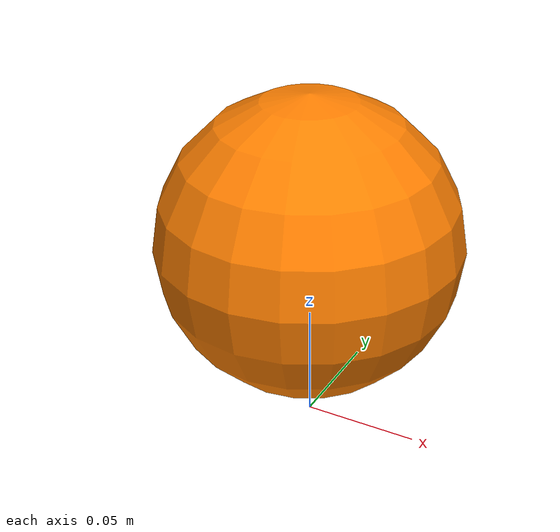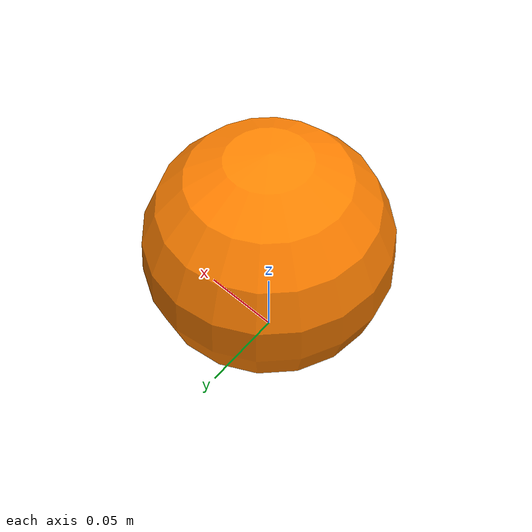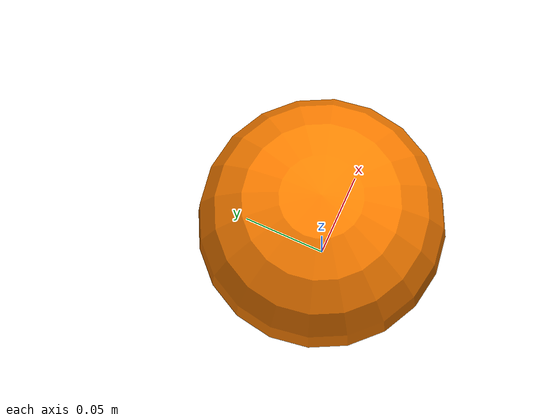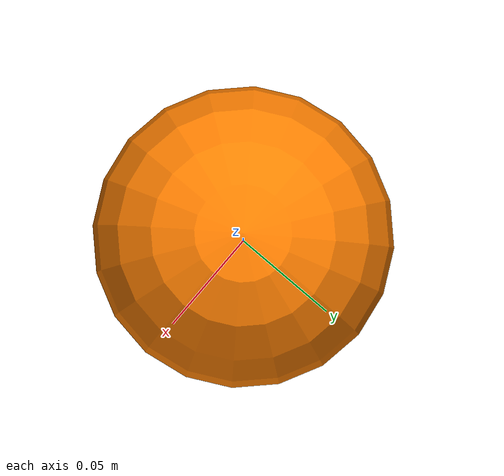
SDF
<sdf version="1.6">
 <world name="robocup_hsl_small">
  <include><uri>model://sun</uri></include>
  <model name="ball">
   <pose>0 0 0.0850 0 0 0</pose>
   <link name="link">
    <inertial>
     <mass>0.055</mass>
     <inertia><ixx>9.3e-5</ixx><ixy>0</ixy><ixz>0</ixz><iyy>9.3e-5</iyy><iyz>0</iyz><izz>9.3e-5</izz></inertia>
    </inertial>
    <collision name="col">
     <geometry><sphere><radius>0.065</radius></sphere></geometry>
     <surface>
      <friction><ode><mu>0.6</mu><mu2>0.6</mu2></ode></friction>
      <bounce><restitution_coefficient>0.6</restitution_coefficient><threshold>0.01</threshold></bounce>
     </surface>
    </collision>
    <visual name="vis">
     <geometry><sphere><radius>0.065</radius></sphere></geometry>
     <material><ambient>1 0.5 0 1</ambient><diffuse>1 0.5 0 1</diffuse></material>
    </visual>
   </link>
  </model>
 </world>
</sdf>
